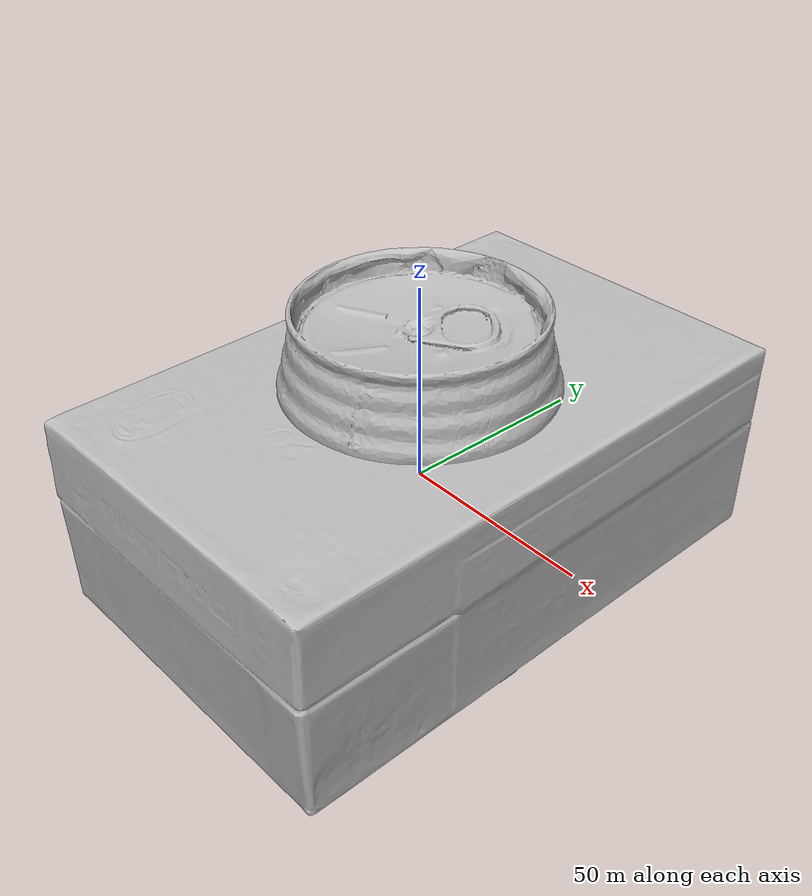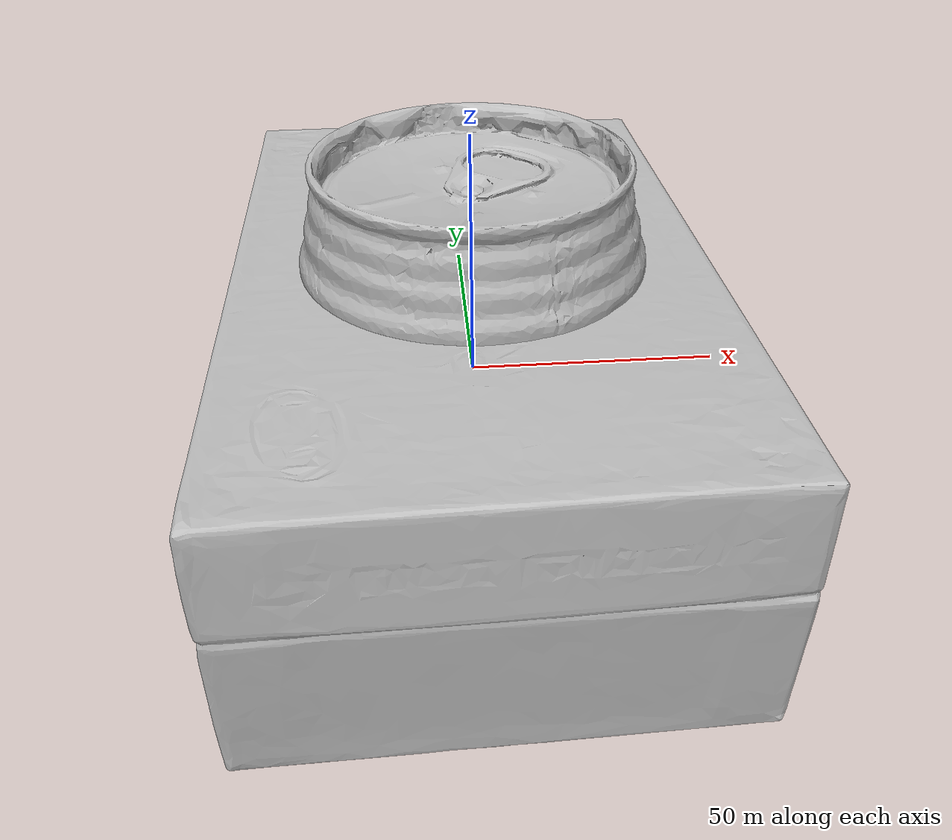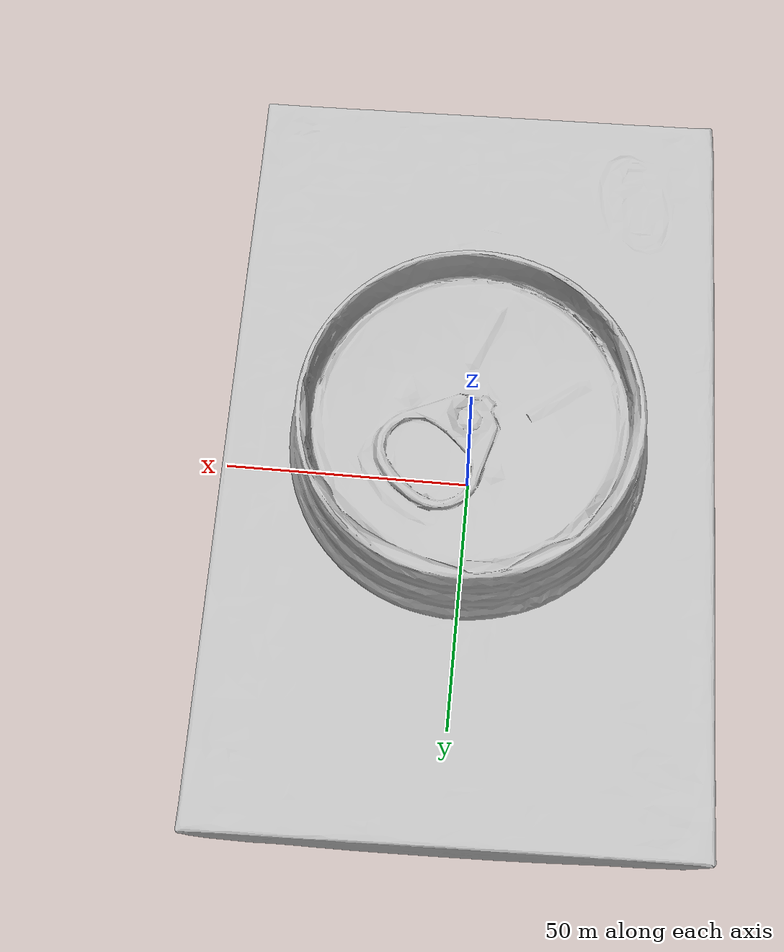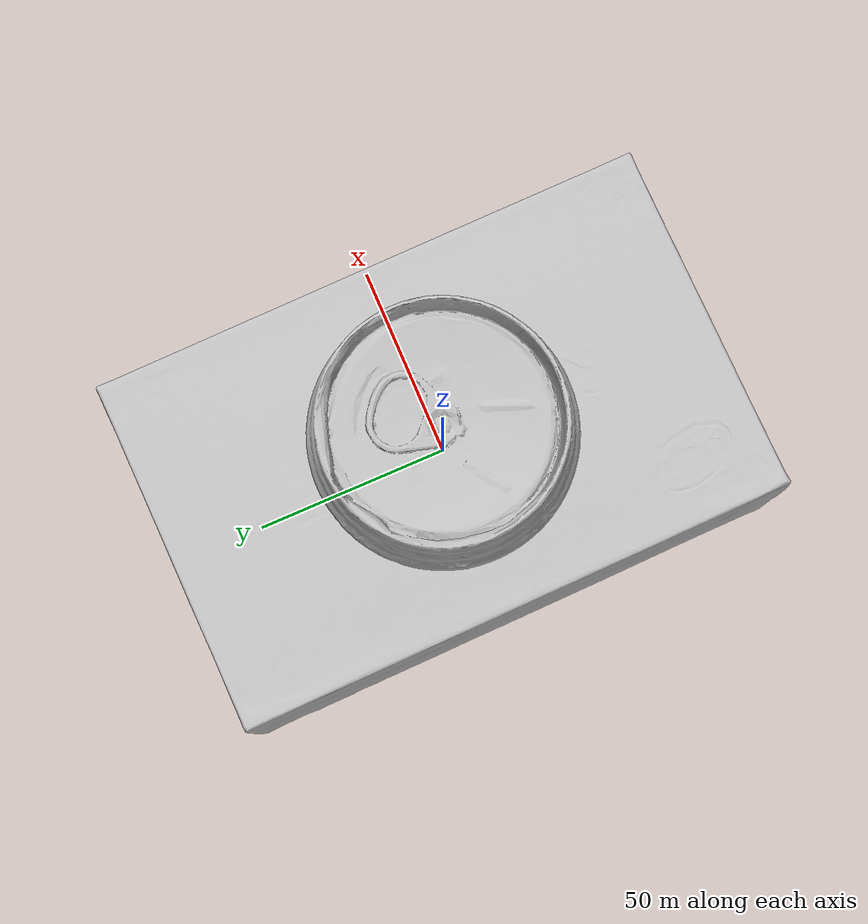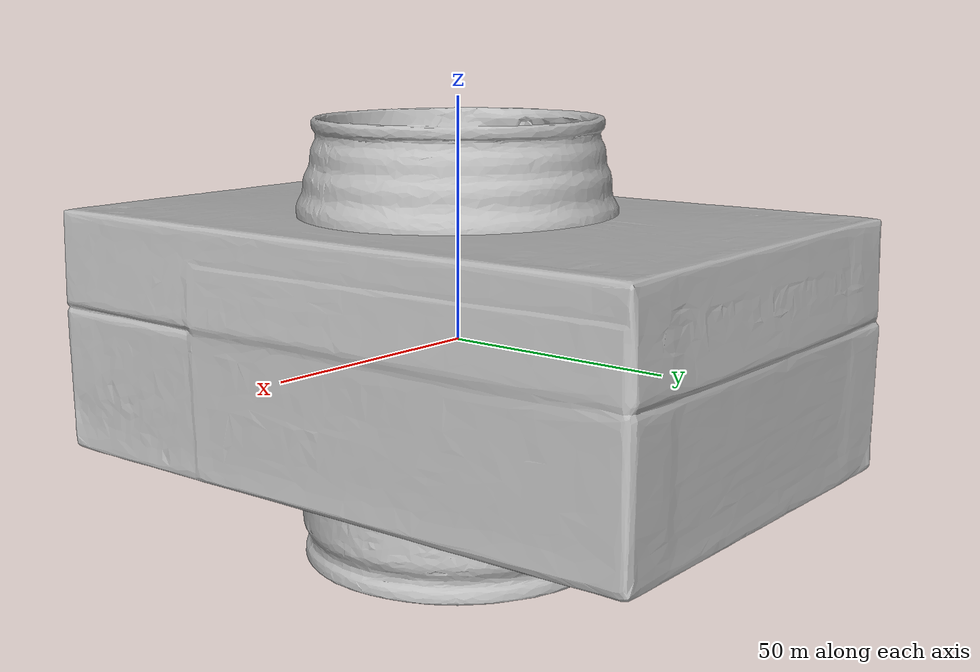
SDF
<sdf version="1.4">
 <world name="default">
  <light name="light1" type="point">
   <pose>0 0 1 0 0 0</pose>
   <diffuse>3 3 3 1</diffuse>
   <specular>3 3 3 1</specular>
  </light>
  <light name="light2" type="point">
   <pose>0 0.5 2 0 0 0</pose>
   <diffuse>1 1 1 1</diffuse>
   <specular>1 1 1 1</specular>
  </light>
  <light name="light3" type="point">
   <pose>0 0.5 2 0 0 0</pose>
   <diffuse>3 3 3 1</diffuse>
   <specular>3 3 3 1</specular>
  </light>
  <scene><ambient>0.7 0.7 0.7</ambient></scene>
  <model name="box1">
   <link name="link_box1">
    <collision name="default">
     <geometry>
      <mesh><uri>model://realsense_box/collision_meshes/collision.obj</uri><scale>1.0 1.0 1.0</scale></mesh>
     </geometry>
     <surface>
      <friction><ode><mu>0.5</mu><mu2>0.5</mu2></ode></friction>
      <contact><ode><max_vel>0</max_vel><min_depth>0.0001</min_depth><kp>1e8</kp></ode></contact>
     </surface>
    </collision>
    <visual name="default">
     <geometry>
      <mesh><uri>model://realsense_box/visual_meshes/visual.dae</uri><scale>1.0 1.0 1.0</scale></mesh>
     </geometry>
    </visual>
    <inertial>
     <mass>0.9783616662025452</mass>
     <pose>4.0744838770478964e-05 8.587493357481435e-05 -2.4153794583980925e-05 -0.00012602841694551038 -0.006358939977979225 0.005012324824875736</pose>
     <inertia>
      <ixx>0.0009306729</ixx>
      <iyy>0.0019425071</iyy>
      <izz>0.002403061</izz>
      <ixy>0</ixy>
      <ixz>0</ixz>
      <iyz>0</iyz>
     </inertia>
    </inertial>
   </link>
   <pose>-0.05137352645397186 0.20633167028427124 0.027316005900502205 -5.949051944098696e-08 7.324137937402793e-10 1.5808250460621374</pose>
  </model>
  <model name="box2">
   <link name="link_box2">
    <collision name="default">
     <geometry>
      <mesh><uri>model://wooden_puzzle2/collision_meshes/collision.obj</uri><scale>1.0 1.0 1.0</scale></mesh>
     </geometry>
     <surface>
      <friction><ode><mu>0.5</mu><mu2>0.5</mu2></ode></friction>
      <contact><ode><max_vel>0</max_vel><min_depth>0.0001</min_depth><kp>1e8</kp></ode></contact>
     </surface>
    </collision>
    <visual name="default">
     <geometry>
      <mesh><uri>model://wooden_puzzle2/visual_meshes/visual.dae</uri><scale>1.0 1.0 1.0</scale></mesh>
     </geometry>
    </visual>
    <inertial>
     <mass>0.024048319086432457</mass>
     <pose>2.7402536943554878e-05 4.997663199901581e-05 6.587122334167361e-05 -0.19203048535200862 0.6112800928970119 -0.6338660341545117</pose>
     <inertia>
      <ixx>4.470326e-06</ixx>
      <iyy>4.593511e-06</iyy>
      <izz>4.528165e-06</izz>
      <ixy>0</ixy>
      <ixz>0</ixz>
      <iyz>0</iyz>
     </inertia>
    </inertial>
   </link>
   <pose>0.25957268476486206 0.10437038540840149 0.01691773533821106 0.020848597657301363 0.0007209344565051295 2.0300111264829344</pose>
  </model>
  <model name="can1">
   <link name="link_can1">
    <collision name="default">
     <geometry>
      <mesh><uri>model://redbull/collision_meshes/collision.obj</uri><scale>1.0 1.0 1.0</scale></mesh>
     </geometry>
     <surface>
      <friction><ode><mu>0.5</mu><mu2>0.5</mu2></ode></friction>
      <contact><ode><max_vel>0</max_vel><min_depth>0.0001</min_depth><kp>1e8</kp></ode></contact>
     </surface>
    </collision>
    <visual name="default">
     <geometry>
      <mesh><uri>model://redbull/visual_meshes/visual.dae</uri><scale>1.0 1.0 1.0</scale></mesh>
     </geometry>
    </visual>
    <inertial>
     <mass>0.19214749336242676</mass>
     <pose>-2.212707477156073e-05 -0.00012659536150749773 -0.0006860988214612007 0.0011364686928787662 -0.01080099531045839 0.5859333437288349</pose>
     <inertia>
      <ixx>0.00018066002</ixx>
      <iyy>0.0001808125</iyy>
      <izz>0.0001072083</izz>
      <ixy>0</ixy>
      <ixz>0</ixz>
      <iyz>0</iyz>
     </inertia>
    </inertial>
   </link>
   <pose>-0.01979011297225952 0.016589462757110596 0.046374280005693436 -0.01097964883253557 0.007604501908598368 2.8617897342846117</pose>
  </model>
  <model name="can2">
   <link name="link_can2">
    <collision name="default">
     <geometry>
      <mesh><uri>model://pepsi/collision_meshes/collision.obj</uri><scale>1.0 1.0 1.0</scale></mesh>
     </geometry>
     <surface>
      <friction><ode><mu>0.5</mu><mu2>0.5</mu2></ode></friction>
      <contact><ode><max_vel>0</max_vel><min_depth>0.0001</min_depth><kp>1e8</kp></ode></contact>
     </surface>
    </collision>
    <visual name="default">
     <geometry><mesh><uri>model://pepsi/visual_meshes/visual.dae</uri><scale>1.0 1.0 1.0</scale></mesh></geometry>
    </visual>
    <inertial>
     <mass>0.3079187572002411</mass>
     <pose>-7.5590331107378e-05 2.9931279641459696e-05 -0.0003384356386959553 -0.0010678548810066889 -0.0021735327588889423 0.5674125845328797</pose>
     <inertia>
      <ixx>0.0006134332</ixx>
      <iyy>0.0006129863</iyy>
      <izz>0.0001305606</izz>
      <ixy>0</ixy>
      <ixz>0</ixz>
      <iyz>0</iyz>
     </inertia>
    </inertial>
   </link>
   <pose>0.03446190059185028 -0.23133568465709686 0.07449635118246078 -1.939785253739819e-05 1.6077029202138022e-06 2.282395760476061</pose>
  </model>
  <physics type="ode">
   <max_contacts>50</max_contacts>
   <ode>
    <solver><type>quick</type><iters>75</iters></solver>
    <constraints>
     <contact_max_correcting_vel>0</contact_max_correcting_vel>
     <contact_surface_layer>0</contact_surface_layer>
    </constraints>
   </ode>
  </physics>
 </world>
</sdf>
